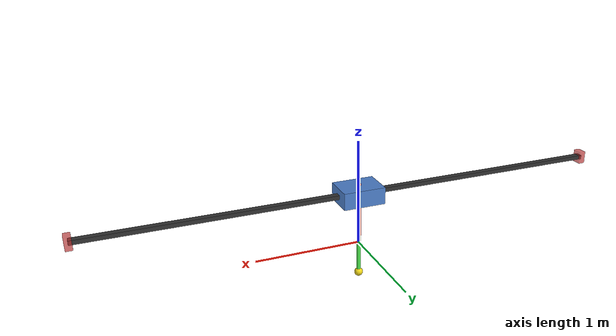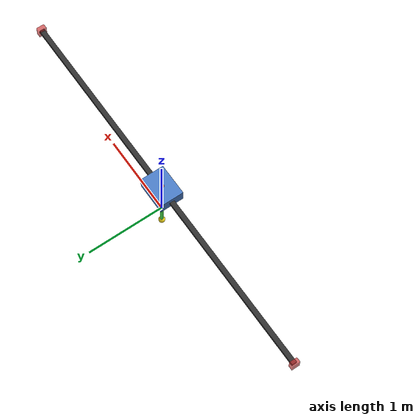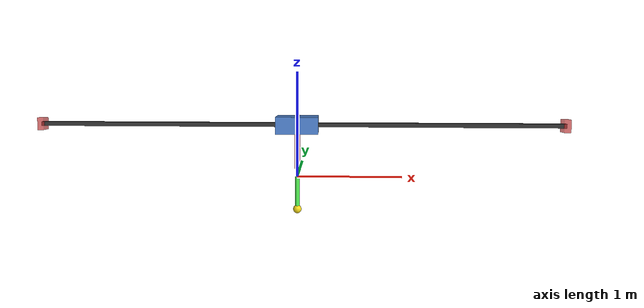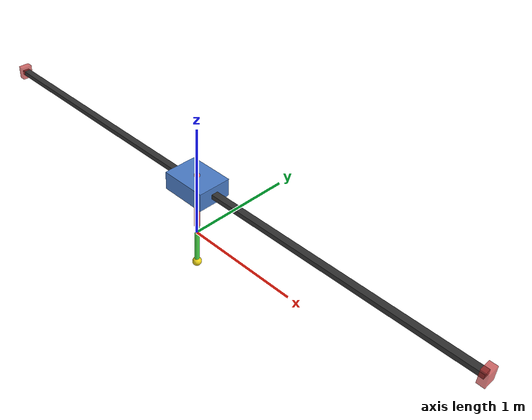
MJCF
<mujoco model="double_pendulum_cart">
  <compiler angle="radian" inertiafromgeom="false" coordinate="local"/>

  <option timestep="0.01" gravity="0 0 -9.81" integrator="RK4">
    <flag contact="disable" energy="enable"/>
  </option>

  <default>
    <geom rgba="0.8 0.6 0.4 1"/>
    <joint damping="0"/>
  </default>

  <visual>
    <global offwidth="640" offheight="480"/>
    <quality shadowsize="4096"/>
  </visual>

  <asset>
    <texture type="skybox" builtin="gradient" rgb1="0.6 0.7 0.8" rgb2="0.2 0.3 0.4" width="512" height="512"/>
  </asset>

  <worldbody>
    <!-- Lighting -->
    <light directional="true" diffuse="0.8 0.8 0.8" specular="0.3 0.3 0.3" pos="0 0 4" dir="0 0 -1"/>

    <!-- Simple rail track (visual only) -->
    <geom name="rail" type="box" size="2.5 0.03 0.02" pos="0 0 0.5"
          rgba="0.2 0.2 0.2 1" contype="0" conaffinity="0"/>

    <!-- Track limits -->
    <geom name="limit_left" type="box" size="0.03 0.05 0.06" pos="-2.5 0 0.5"
          rgba="0.8 0.2 0.2 0.7" contype="0" conaffinity="0"/>
    <geom name="limit_right" type="box" size="0.03 0.05 0.06" pos="2.5 0 0.5"
          rgba="0.8 0.2 0.2 0.7" contype="0" conaffinity="0"/>

    <!-- Cart (M_cart = 1.0 kg) -->
    <body name="cart" pos="0 0 0.5">
      <joint name="slider" type="slide" axis="1 0 0" limited="true" range="-2 2" damping="0"/>
      <geom name="cart_body" type="box" size="0.2 0.15 0.08" rgba="0.3 0.5 0.8 1" mass="0"/>
      <inertial pos="0 0 0" mass="1.0" diaginertia="0.01 0.01 0.01"/>

      <!-- First Pendulum: m1=0.3kg, l1=0.5m, COM at lc1=0.25m from pivot, I1=0.01 -->
      <body name="pole1" pos="0 0 0.08">
        <joint name="hinge1" type="hinge" axis="0 1 0" limited="false" damping="0"/>

        <!-- Visual geometry -->
        <geom name="pole1_rod" type="capsule" fromto="0 0 0 0 0 -0.5"
              size="0.025" rgba="0.9 0.3 0.3 1" contype="0" conaffinity="0" mass="0"/>

        <!-- CRITICAL: Inertial properties matching your analytical model -->
        <!-- mass = m1 = 0.3 kg -->
        <!-- COM at lc1 = 0.25m from pivot (LOCAL coordinates: 0 0 -0.25) -->
        <!-- Inertia about COM = I1 = 0.01 kg⋅m² -->
        <inertial pos="0 0 -0.25" mass="0.3" diaginertia="0.01 0.01 0.0001"/>

        <!-- Second Pendulum: m2=0.2kg, l2=0.4m, COM at lc2=0.2m from joint, I2=0.008 -->
        <body name="pole2" pos="0 0 -0.5">
          <joint name="hinge2" type="hinge" axis="0 1 0" limited="false" damping="0"/>

          <!-- Visual geometry -->
          <geom name="pole2_rod" type="capsule" fromto="0 0 0 0 0 -0.4"
                size="0.02" rgba="0.3 0.9 0.3 1" contype="0" conaffinity="0" mass="0"/>
          <geom name="tip" type="sphere" pos="0 0 -0.4" size="0.04"
                rgba="0.95 0.85 0.1 1" contype="0" conaffinity="0" mass="0"/>

          <!-- CRITICAL: Inertial properties matching your analytical model -->
          <!-- mass = m2 = 0.2 kg -->
          <!-- COM at lc2 = 0.2m from joint (LOCAL coordinates: 0 0 -0.2) -->
          <!-- Inertia about COM = I2 = 0.008 kg⋅m² -->
          <inertial pos="0 0 -0.2" mass="0.2" diaginertia="0.008 0.008 0.0001"/>
        </body>
      </body>
    </body>
  </worldbody>

  <actuator>
    <!-- Motor with gear=1 means force is directly applied -->
    <motor joint="slider" gear="1" ctrllimited="true" ctrlrange="-20 20"/>
  </actuator>

  <sensor>
    <jointpos name="cart_pos" joint="slider"/>
    <jointpos name="pole1_pos" joint="hinge1"/>
    <jointpos name="pole2_pos" joint="hinge2"/>
    <jointvel name="cart_vel" joint="slider"/>
    <jointvel name="pole1_vel" joint="hinge1"/>
    <jointvel name="pole2_vel" joint="hinge2"/>
  </sensor>
</mujoco>
